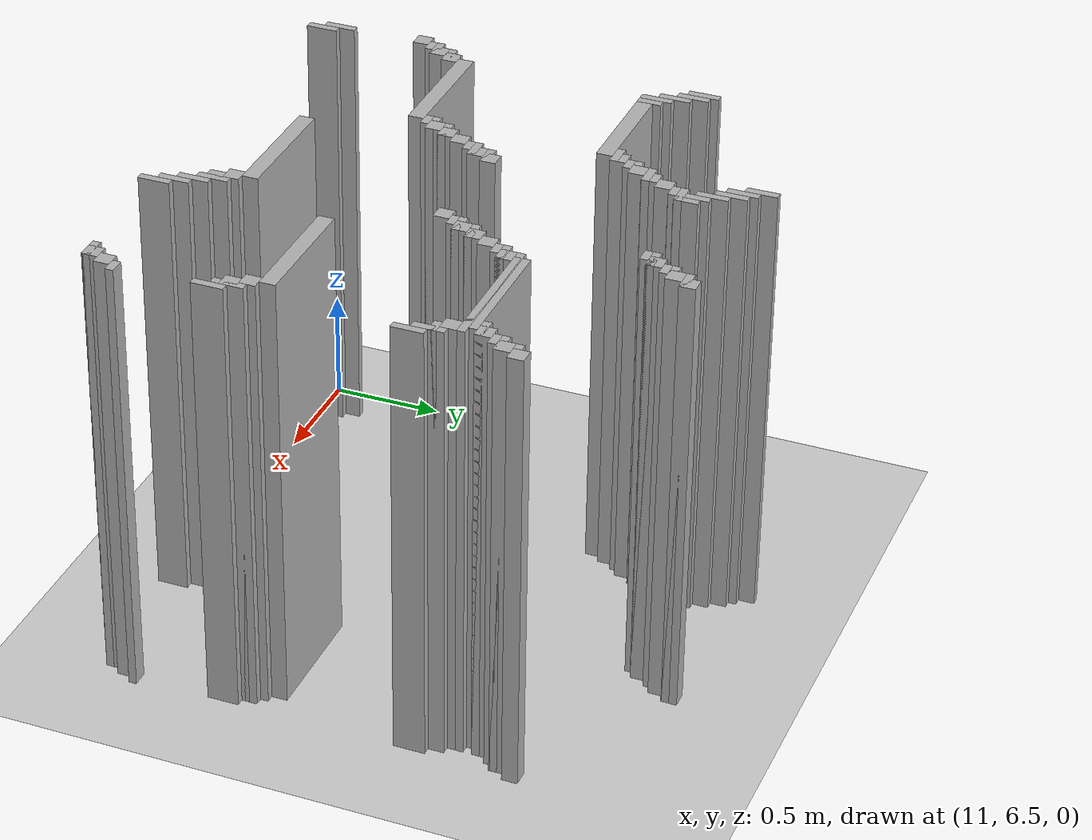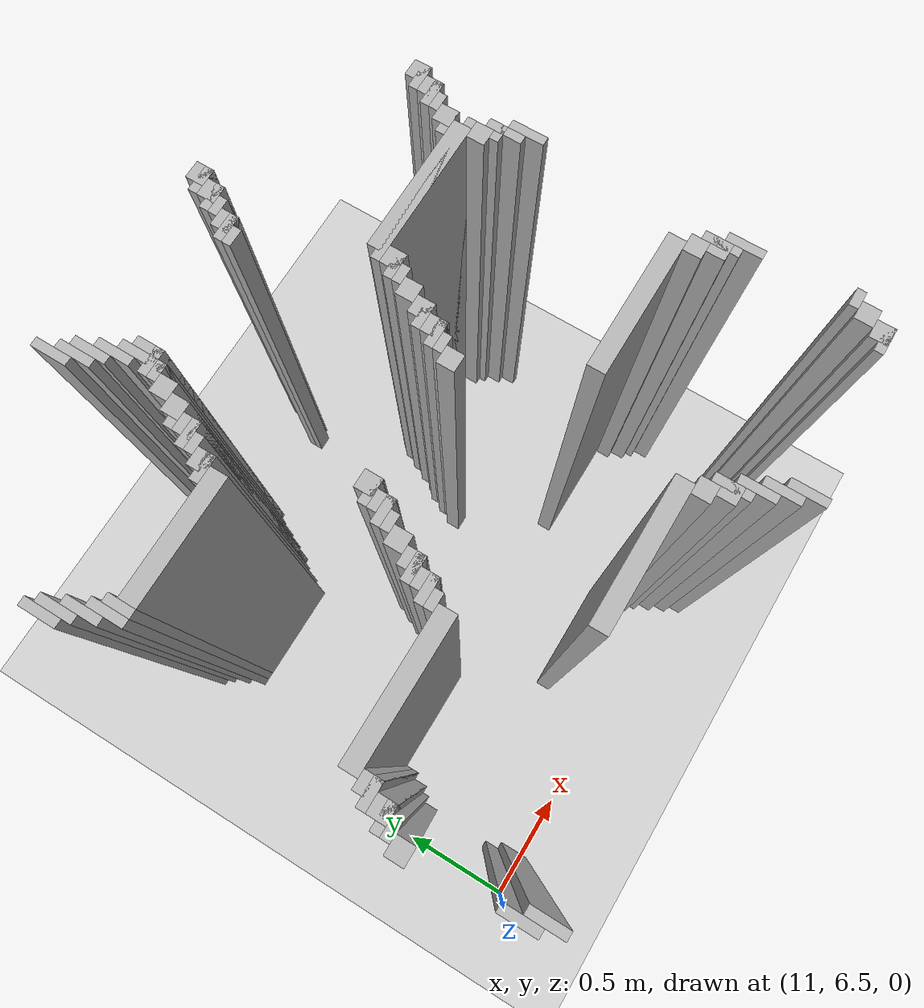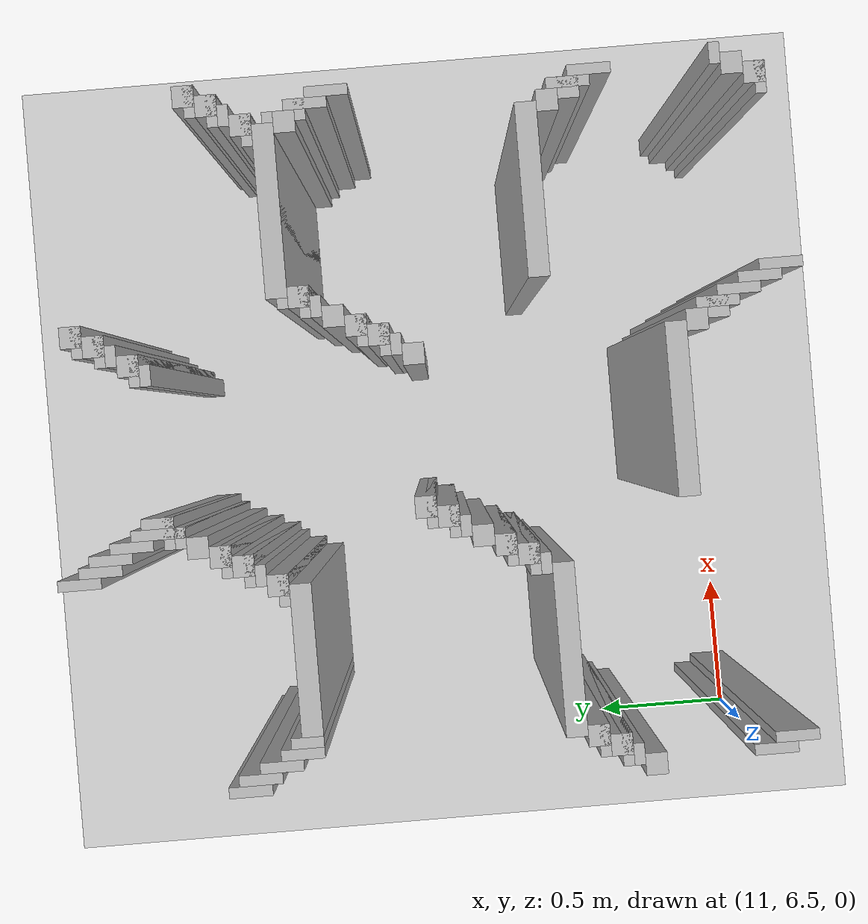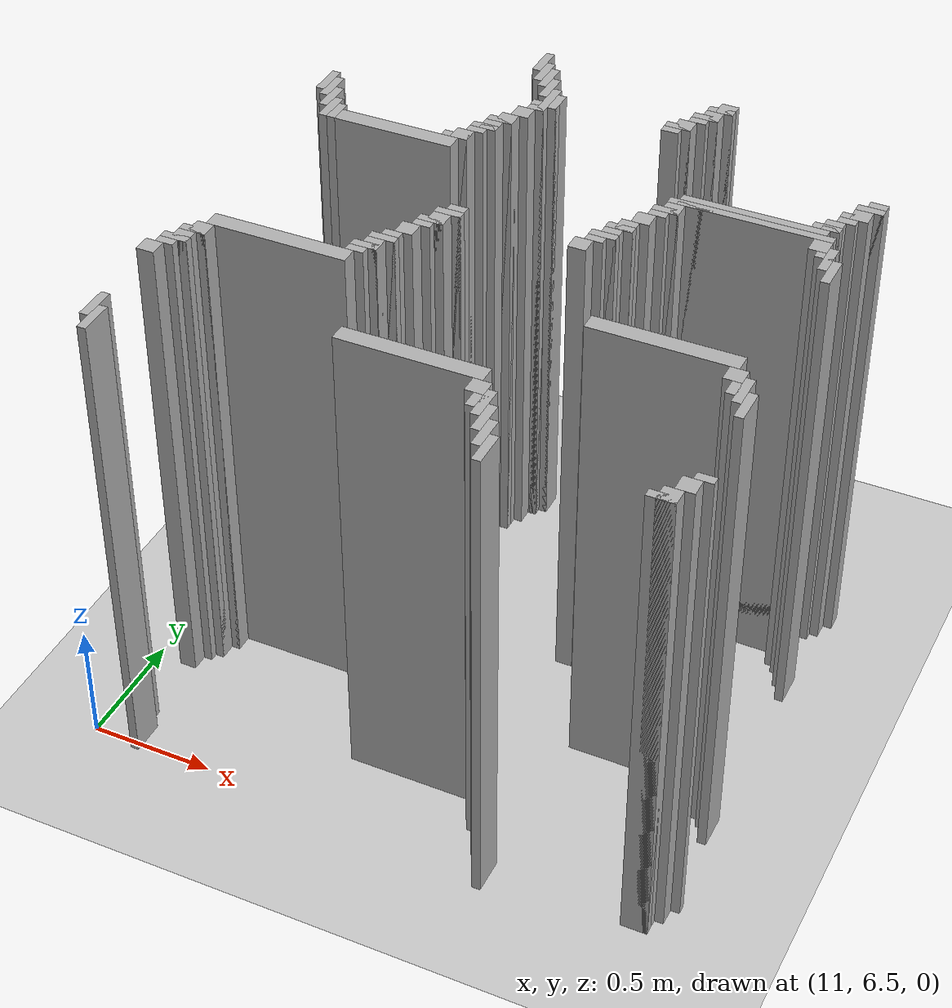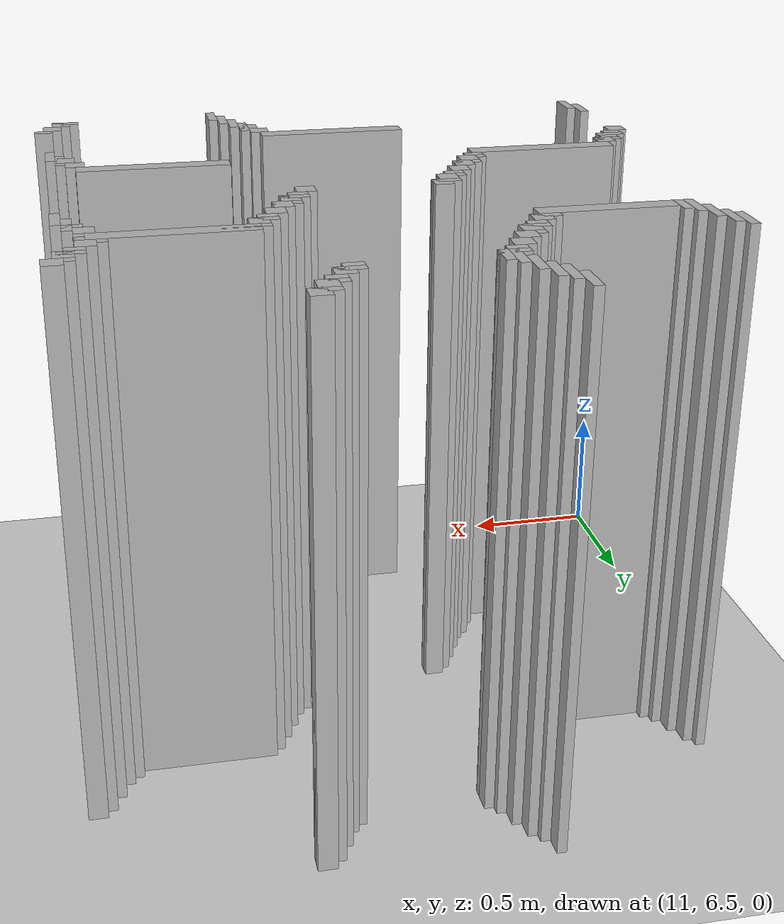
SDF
<sdf version="1.6">
 <world name="slam_world">
  <model name="ground_plane">
   <static>true</static>
   <link name="link">
    <collision name="collision">
     <geometry><plane><normal>0 0 1</normal><size>100 100</size></plane></geometry>
    </collision>
    <visual name="visual">
     <geometry><plane><normal>0 0 1</normal><size>100 100</size></plane></geometry>
     <material>
      <ambient>0.8 0.8 0.8 1</ambient>
      <diffuse>0.8 0.8 0.8 1</diffuse>
      <specular>0.8 0.8 0.8 1</specular>
     </material>
    </visual>
   </link>
  </model>
  <model name="wall_2869">
   <static>true</static>
   <pose>11.850348027842227 8.77030162412993 1.0 0 0 0</pose>
   <link name="link">
    <collision name="collision">
     <geometry><box><size>0.03480278422273782 0.13921113689095127 2.0</size></box></geometry>
    </collision>
    <visual name="visual">
     <geometry><box><size>0.03480278422273782 0.13921113689095127 2.0</size></box></geometry>
     <material><ambient>0.5 0.5 0.5 1</ambient><diffuse>0.7 0.7 0.7 1</diffuse></material>
    </visual>
   </link>
  </model>
  <model name="wall_2884">
   <static>true</static>
   <pose>11.885150812064964 8.700696055684455 1.0 0 0 0</pose>
   <link name="link">
    <collision name="collision">
     <geometry><box><size>0.03480278422273782 0.13921113689095127 2.0</size></box></geometry>
    </collision>
    <visual name="visual">
     <geometry><box><size>0.03480278422273782 0.13921113689095127 2.0</size></box></geometry>
     <material><ambient>0.5 0.5 0.5 1</ambient><diffuse>0.7 0.7 0.7 1</diffuse></material>
    </visual>
   </link>
  </model>
  <model name="wall_2885">
   <static>true</static>
   <pose>12.633410672853827 8.735498839907192 1.0 0 0 0</pose>
   <link name="link">
    <collision name="collision">
     <geometry><box><size>0.06960556844547564 0.06960556844547564 2.0</size></box></geometry>
    </collision>
    <visual name="visual">
     <geometry><box><size>0.06960556844547564 0.06960556844547564 2.0</size></box></geometry>
     <material><ambient>0.5 0.5 0.5 1</ambient><diffuse>0.7 0.7 0.7 1</diffuse></material>
    </visual>
   </link>
  </model>
  <model name="wall_2899">
   <static>true</static>
   <pose>11.919953596287703 8.665893271461716 1.0 0 0 0</pose>
   <link name="link">
    <collision name="collision">
     <geometry><box><size>0.03480278422273782 0.13921113689095127 2.0</size></box></geometry>
    </collision>
    <visual name="visual">
     <geometry><box><size>0.03480278422273782 0.13921113689095127 2.0</size></box></geometry>
     <material><ambient>0.5 0.5 0.5 1</ambient><diffuse>0.7 0.7 0.7 1</diffuse></material>
    </visual>
   </link>
  </model>
  <model name="wall_2900">
   <static>true</static>
   <pose>12.616009280742459 8.718097447795824 1.0 0 0 0</pose>
   <link name="link">
    <collision name="collision">
     <geometry><box><size>0.10440835266821345 0.03480278422273782 2.0</size></box></geometry>
    </collision>
    <visual name="visual">
     <geometry><box><size>0.10440835266821345 0.03480278422273782 2.0</size></box></geometry>
     <material><ambient>0.5 0.5 0.5 1</ambient><diffuse>0.7 0.7 0.7 1</diffuse></material>
    </visual>
   </link>
  </model>
  <model name="wall_2912">
   <static>true</static>
   <pose>12.59860788863109 8.665893271461716 1.0 0 0 0</pose>
   <link name="link">
    <collision name="collision">
     <geometry><box><size>0.06960556844547564 0.06960556844547564 2.0</size></box></geometry>
    </collision>
    <visual name="visual">
     <geometry><box><size>0.06960556844547564 0.06960556844547564 2.0</size></box></geometry>
     <material><ambient>0.5 0.5 0.5 1</ambient><diffuse>0.7 0.7 0.7 1</diffuse></material>
    </visual>
   </link>
  </model>
  <model name="wall_2925">
   <static>true</static>
   <pose>11.95475638051044 8.596287703016241 1.0 0 0 0</pose>
   <link name="link">
    <collision name="collision">
     <geometry><box><size>0.03480278422273782 0.13921113689095127 2.0</size></box></geometry>
    </collision>
    <visual name="visual">
     <geometry><box><size>0.03480278422273782 0.13921113689095127 2.0</size></box></geometry>
     <material><ambient>0.5 0.5 0.5 1</ambient><diffuse>0.7 0.7 0.7 1</diffuse></material>
    </visual>
   </link>
  </model>
  <model name="wall_2926">
   <static>true</static>
   <pose>12.581206496519721 8.648491879350347 1.0 0 0 0</pose>
   <link name="link">
    <collision name="collision">
     <geometry><box><size>0.10440835266821345 0.03480278422273782 2.0</size></box></geometry>
    </collision>
    <visual name="visual">
     <geometry><box><size>0.10440835266821345 0.03480278422273782 2.0</size></box></geometry>
     <material><ambient>0.5 0.5 0.5 1</ambient><diffuse>0.7 0.7 0.7 1</diffuse></material>
    </visual>
   </link>
  </model>
  <model name="wall_2933">
   <static>true</static>
   <pose>12.563805104408353 8.61368909512761 1.0 0 0 0</pose>
   <link name="link">
    <collision name="collision">
     <geometry><box><size>0.06960556844547564 0.03480278422273782 2.0</size></box></geometry>
    </collision>
    <visual name="visual">
     <geometry><box><size>0.06960556844547564 0.03480278422273782 2.0</size></box></geometry>
     <material><ambient>0.5 0.5 0.5 1</ambient><diffuse>0.7 0.7 0.7 1</diffuse></material>
    </visual>
   </link>
  </model>
  <model name="wall_2946">
   <static>true</static>
   <pose>11.989559164733178 8.509280742459396 1.0 0 0 0</pose>
   <link name="link">
    <collision name="collision">
     <geometry><box><size>0.03480278422273782 0.17401392111368907 2.0</size></box></geometry>
    </collision>
    <visual name="visual">
     <geometry><box><size>0.03480278422273782 0.17401392111368907 2.0</size></box></geometry>
     <material><ambient>0.5 0.5 0.5 1</ambient><diffuse>0.7 0.7 0.7 1</diffuse></material>
    </visual>
   </link>
  </model>
  <model name="wall_2947">
   <static>true</static>
   <pose>12.529002320185615 8.561484918793504 1.0 0 0 0</pose>
   <link name="link">
    <collision name="collision">
     <geometry><box><size>0.06960556844547564 0.06960556844547564 2.0</size></box></geometry>
    </collision>
    <visual name="visual">
     <geometry><box><size>0.06960556844547564 0.06960556844547564 2.0</size></box></geometry>
     <material><ambient>0.5 0.5 0.5 1</ambient><diffuse>0.7 0.7 0.7 1</diffuse></material>
    </visual>
   </link>
  </model>
  <model name="wall_2961">
   <static>true</static>
   <pose>12.024361948955915 8.509280742459396 1.0 0 0 0</pose>
   <link name="link">
    <collision name="collision">
     <geometry><box><size>0.03480278422273782 0.10440835266821345 2.0</size></box></geometry>
    </collision>
    <visual name="visual">
     <geometry><box><size>0.03480278422273782 0.10440835266821345 2.0</size></box></geometry>
     <material><ambient>0.5 0.5 0.5 1</ambient><diffuse>0.7 0.7 0.7 1</diffuse></material>
    </visual>
   </link>
  </model>
  <model name="wall_2962">
   <static>true</static>
   <pose>12.511600928074245 8.544083526682135 1.0 0 0 0</pose>
   <link name="link">
    <collision name="collision">
     <geometry><box><size>0.10440835266821345 0.03480278422273782 2.0</size></box></geometry>
    </collision>
    <visual name="visual">
     <geometry><box><size>0.10440835266821345 0.03480278422273782 2.0</size></box></geometry>
     <material><ambient>0.5 0.5 0.5 1</ambient><diffuse>0.7 0.7 0.7 1</diffuse></material>
    </visual>
   </link>
  </model>
  <model name="wall_2973">
   <static>true</static>
   <pose>12.494199535962876 8.509280742459396 1.0 0 0 0</pose>
   <link name="link">
    <collision name="collision">
     <geometry><box><size>0.06960556844547564 0.03480278422273782 2.0</size></box></geometry>
    </collision>
    <visual name="visual">
     <geometry><box><size>0.06960556844547564 0.03480278422273782 2.0</size></box></geometry>
     <material><ambient>0.5 0.5 0.5 1</ambient><diffuse>0.7 0.7 0.7 1</diffuse></material>
    </visual>
   </link>
  </model>
  <model name="wall_2983">
   <static>true</static>
   <pose>11.989559164733178 8.474477958236658 1.0 0 0 0</pose>
   <link name="link">
    <collision name="collision">
     <geometry><box><size>0.10440835266821345 0.03480278422273782 2.0</size></box></geometry>
    </collision>
    <visual name="visual">
     <geometry><box><size>0.10440835266821345 0.03480278422273782 2.0</size></box></geometry>
     <material><ambient>0.5 0.5 0.5 1</ambient><diffuse>0.7 0.7 0.7 1</diffuse></material>
    </visual>
   </link>
  </model>
  <model name="wall_2996">
   <static>true</static>
   <pose>11.97215777262181 8.43967517401392 1.0 0 0 0</pose>
   <link name="link">
    <collision name="collision">
     <geometry><box><size>0.06960556844547564 0.03480278422273782 2.0</size></box></geometry>
    </collision>
    <visual name="visual">
     <geometry><box><size>0.06960556844547564 0.03480278422273782 2.0</size></box></geometry>
     <material><ambient>0.5 0.5 0.5 1</ambient><diffuse>0.7 0.7 0.7 1</diffuse></material>
    </visual>
   </link>
  </model>
  <model name="wall_3009">
   <static>true</static>
   <pose>11.937354988399072 8.387470997679815 1.0 0 0 0</pose>
   <link name="link">
    <collision name="collision">
     <geometry><box><size>0.06960556844547564 0.06960556844547564 2.0</size></box></geometry>
    </collision>
    <visual name="visual">
     <geometry><box><size>0.06960556844547564 0.06960556844547564 2.0</size></box></geometry>
     <material><ambient>0.5 0.5 0.5 1</ambient><diffuse>0.7 0.7 0.7 1</diffuse></material>
    </visual>
   </link>
  </model>
  <model name="wall_3021">
   <static>true</static>
   <pose>11.154292343387471 8.2830626450116 1.0 0 0 0</pose>
   <link name="link">
    <collision name="collision">
     <geometry><box><size>0.03480278422273782 0.13921113689095127 2.0</size></box></geometry>
    </collision>
    <visual name="visual">
     <geometry><box><size>0.03480278422273782 0.13921113689095127 2.0</size></box></geometry>
     <material><ambient>0.5 0.5 0.5 1</ambient><diffuse>0.7 0.7 0.7 1</diffuse></material>
    </visual>
   </link>
  </model>
  <model name="wall_3022">
   <static>true</static>
   <pose>11.902552204176333 8.317865429234338 1.0 0 0 0</pose>
   <link name="link">
    <collision name="collision">
     <geometry><box><size>0.06960556844547564 0.06960556844547564 2.0</size></box></geometry>
    </collision>
    <visual name="visual">
     <geometry><box><size>0.06960556844547564 0.06960556844547564 2.0</size></box></geometry>
     <material><ambient>0.5 0.5 0.5 1</ambient><diffuse>0.7 0.7 0.7 1</diffuse></material>
    </visual>
   </link>
  </model>
  <model name="wall_3023">
   <static>true</static>
   <pose>13.364269141531322 8.317865429234338 1.0 0 0 0</pose>
   <link name="link">
    <collision name="collision">
     <geometry><box><size>0.06960556844547564 0.06960556844547564 2.0</size></box></geometry>
    </collision>
    <visual name="visual">
     <geometry><box><size>0.06960556844547564 0.06960556844547564 2.0</size></box></geometry>
     <material><ambient>0.5 0.5 0.5 1</ambient><diffuse>0.7 0.7 0.7 1</diffuse></material>
    </visual>
   </link>
  </model>
  <model name="wall_3034">
   <static>true</static>
   <pose>11.189095127610209 8.248259860788863 1.0 0 0 0</pose>
   <link name="link">
    <collision name="collision">
     <geometry><box><size>0.03480278422273782 0.13921113689095127 2.0</size></box></geometry>
    </collision>
    <visual name="visual">
     <geometry><box><size>0.03480278422273782 0.13921113689095127 2.0</size></box></geometry>
     <material><ambient>0.5 0.5 0.5 1</ambient><diffuse>0.7 0.7 0.7 1</diffuse></material>
    </visual>
   </link>
  </model>
  <model name="wall_3035">
   <static>true</static>
   <pose>11.885150812064964 8.30046403712297 1.0 0 0 0</pose>
   <link name="link">
    <collision name="collision">
     <geometry><box><size>0.10440835266821345 0.03480278422273782 2.0</size></box></geometry>
    </collision>
    <visual name="visual">
     <geometry><box><size>0.10440835266821345 0.03480278422273782 2.0</size></box></geometry>
     <material><ambient>0.5 0.5 0.5 1</ambient><diffuse>0.7 0.7 0.7 1</diffuse></material>
    </visual>
   </link>
  </model>
  <model name="wall_3036">
   <static>true</static>
   <pose>13.346867749419953 8.30046403712297 1.0 0 0 0</pose>
   <link name="link">
    <collision name="collision">
     <geometry><box><size>0.10440835266821345 0.03480278422273782 2.0</size></box></geometry>
    </collision>
    <visual name="visual">
     <geometry><box><size>0.10440835266821345 0.03480278422273782 2.0</size></box></geometry>
     <material><ambient>0.5 0.5 0.5 1</ambient><diffuse>0.7 0.7 0.7 1</diffuse></material>
    </visual>
   </link>
  </model>
  <model name="wall_3046">
   <static>true</static>
   <pose>11.867749419953595 8.248259860788863 1.0 0 0 0</pose>
   <link name="link">
    <collision name="collision">
     <geometry><box><size>0.06960556844547564 0.06960556844547564 2.0</size></box></geometry>
    </collision>
    <visual name="visual">
     <geometry><box><size>0.06960556844547564 0.06960556844547564 2.0</size></box></geometry>
     <material><ambient>0.5 0.5 0.5 1</ambient><diffuse>0.7 0.7 0.7 1</diffuse></material>
    </visual>
   </link>
  </model>
  <model name="wall_3047">
   <static>true</static>
   <pose>13.329466357308585 8.248259860788863 1.0 0 0 0</pose>
   <link name="link">
    <collision name="collision">
     <geometry><box><size>0.06960556844547564 0.06960556844547564 2.0</size></box></geometry>
    </collision>
    <visual name="visual">
     <geometry><box><size>0.06960556844547564 0.06960556844547564 2.0</size></box></geometry>
     <material><ambient>0.5 0.5 0.5 1</ambient><diffuse>0.7 0.7 0.7 1</diffuse></material>
    </visual>
   </link>
  </model>
  <model name="wall_3058">
   <static>true</static>
   <pose>11.223897911832946 8.178654292343387 1.0 0 0 0</pose>
   <link name="link">
    <collision name="collision">
     <geometry><box><size>0.03480278422273782 0.13921113689095127 2.0</size></box></geometry>
    </collision>
    <visual name="visual">
     <geometry><box><size>0.03480278422273782 0.13921113689095127 2.0</size></box></geometry>
     <material><ambient>0.5 0.5 0.5 1</ambient><diffuse>0.7 0.7 0.7 1</diffuse></material>
    </visual>
   </link>
  </model>
  <model name="wall_3059">
   <static>true</static>
   <pose>11.850348027842227 8.230858468677495 1.0 0 0 0</pose>
   <link name="link">
    <collision name="collision">
     <geometry><box><size>0.10440835266821345 0.03480278422273782 2.0</size></box></geometry>
    </collision>
    <visual name="visual">
     <geometry><box><size>0.10440835266821345 0.03480278422273782 2.0</size></box></geometry>
     <material><ambient>0.5 0.5 0.5 1</ambient><diffuse>0.7 0.7 0.7 1</diffuse></material>
    </visual>
   </link>
  </model>
  <model name="wall_3060">
   <static>true</static>
   <pose>13.312064965197216 8.230858468677495 1.0 0 0 0</pose>
   <link name="link">
    <collision name="collision">
     <geometry><box><size>0.10440835266821345 0.03480278422273782 2.0</size></box></geometry>
    </collision>
    <visual name="visual">
     <geometry><box><size>0.10440835266821345 0.03480278422273782 2.0</size></box></geometry>
     <material><ambient>0.5 0.5 0.5 1</ambient><diffuse>0.7 0.7 0.7 1</diffuse></material>
    </visual>
   </link>
  </model>
  <model name="wall_3068">
   <static>true</static>
   <pose>11.832946635730858 8.196055684454755 1.0 0 0 0</pose>
   <link name="link">
    <collision name="collision">
     <geometry><box><size>0.06960556844547564 0.03480278422273782 2.0</size></box></geometry>
    </collision>
    <visual name="visual">
     <geometry><box><size>0.06960556844547564 0.03480278422273782 2.0</size></box></geometry>
     <material><ambient>0.5 0.5 0.5 1</ambient><diffuse>0.7 0.7 0.7 1</diffuse></material>
    </visual>
   </link>
  </model>
  <model name="wall_3069">
   <static>true</static>
   <pose>13.294663573085847 8.196055684454755 1.0 0 0 0</pose>
   <link name="link">
    <collision name="collision">
     <geometry><box><size>0.06960556844547564 0.03480278422273782 2.0</size></box></geometry>
    </collision>
    <visual name="visual">
     <geometry><box><size>0.06960556844547564 0.03480278422273782 2.0</size></box></geometry>
     <material><ambient>0.5 0.5 0.5 1</ambient><diffuse>0.7 0.7 0.7 1</diffuse></material>
    </visual>
   </link>
  </model>
  <model name="wall_3080">
   <static>true</static>
   <pose>11.258700696055683 8.109048723897912 1.0 0 0 0</pose>
   <link name="link">
    <collision name="collision">
     <geometry><box><size>0.03480278422273782 0.13921113689095127 2.0</size></box></geometry>
    </collision>
    <visual name="visual">
     <geometry><box><size>0.03480278422273782 0.13921113689095127 2.0</size></box></geometry>
     <material><ambient>0.5 0.5 0.5 1</ambient><diffuse>0.7 0.7 0.7 1</diffuse></material>
    </visual>
   </link>
  </model>
  <model name="wall_3081">
   <static>true</static>
   <pose>11.79814385150812 8.14385150812065 1.0 0 0 0</pose>
   <link name="link">
    <collision name="collision">
     <geometry><box><size>0.06960556844547564 0.06960556844547564 2.0</size></box></geometry>
    </collision>
    <visual name="visual">
     <geometry><box><size>0.06960556844547564 0.06960556844547564 2.0</size></box></geometry>
     <material><ambient>0.5 0.5 0.5 1</ambient><diffuse>0.7 0.7 0.7 1</diffuse></material>
    </visual>
   </link>
  </model>
  <model name="wall_3082">
   <static>true</static>
   <pose>13.259860788863108 8.14385150812065 1.0 0 0 0</pose>
   <link name="link">
    <collision name="collision">
     <geometry><box><size>0.06960556844547564 0.06960556844547564 2.0</size></box></geometry>
    </collision>
    <visual name="visual">
     <geometry><box><size>0.06960556844547564 0.06960556844547564 2.0</size></box></geometry>
     <material><ambient>0.5 0.5 0.5 1</ambient><diffuse>0.7 0.7 0.7 1</diffuse></material>
    </visual>
   </link>
  </model>
  <model name="wall_3092">
   <static>true</static>
   <pose>11.293503480278423 8.091647331786543 1.0 0 0 0</pose>
   <link name="link">
    <collision name="collision">
     <geometry><box><size>0.03480278422273782 0.10440835266821345 2.0</size></box></geometry>
    </collision>
    <visual name="visual">
     <geometry><box><size>0.03480278422273782 0.10440835266821345 2.0</size></box></geometry>
     <material><ambient>0.5 0.5 0.5 1</ambient><diffuse>0.7 0.7 0.7 1</diffuse></material>
    </visual>
   </link>
  </model>
  <model name="wall_3093">
   <static>true</static>
   <pose>11.780742459396752 8.12645011600928 1.0 0 0 0</pose>
   <link name="link">
    <collision name="collision">
     <geometry><box><size>0.10440835266821345 0.03480278422273782 2.0</size></box></geometry>
    </collision>
    <visual name="visual">
     <geometry><box><size>0.10440835266821345 0.03480278422273782 2.0</size></box></geometry>
     <material><ambient>0.5 0.5 0.5 1</ambient><diffuse>0.7 0.7 0.7 1</diffuse></material>
    </visual>
   </link>
  </model>
  <model name="wall_3094">
   <static>true</static>
   <pose>13.24245939675174 8.12645011600928 1.0 0 0 0</pose>
   <link name="link">
    <collision name="collision">
     <geometry><box><size>0.10440835266821345 0.03480278422273782 2.0</size></box></geometry>
    </collision>
    <visual name="visual">
     <geometry><box><size>0.10440835266821345 0.03480278422273782 2.0</size></box></geometry>
     <material><ambient>0.5 0.5 0.5 1</ambient><diffuse>0.7 0.7 0.7 1</diffuse></material>
    </visual>
   </link>
  </model>
  <model name="wall_3104">
   <static>true</static>
   <pose>11.554524361948955 8.074245939675174 1.0 0 0 0</pose>
   <link name="link">
    <collision name="collision">
     <geometry><box><size>0.4872389791183295 0.06960556844547564 2.0</size></box></geometry>
    </collision>
    <visual name="visual">
     <geometry><box><size>0.4872389791183295 0.06960556844547564 2.0</size></box></geometry>
     <material><ambient>0.5 0.5 0.5 1</ambient><diffuse>0.7 0.7 0.7 1</diffuse></material>
    </visual>
   </link>
  </model>
  <model name="wall_3105">
   <static>true</static>
   <pose>12.981438515081207 8.074245939675174 1.0 0 0 0</pose>
   <link name="link">
    <collision name="collision">
     <geometry><box><size>0.5568445475638051 0.06960556844547564 2.0</size></box></geometry>
    </collision>
    <visual name="visual">
     <geometry><box><size>0.5568445475638051 0.06960556844547564 2.0</size></box></geometry>
     <material><ambient>0.5 0.5 0.5 1</ambient><diffuse>0.7 0.7 0.7 1</diffuse></material>
    </visual>
   </link>
  </model>
  <model name="wall_3112">
   <static>true</static>
   <pose>12.981438515081207 8.056844547563804 1.0 0 0 0</pose>
   <link name="link">
    <collision name="collision">
     <geometry><box><size>0.6264501160092807 0.03480278422273782 2.0</size></box></geometry>
    </collision>
    <visual name="visual">
     <geometry><box><size>0.6264501160092807 0.03480278422273782 2.0</size></box></geometry>
     <material><ambient>0.5 0.5 0.5 1</ambient><diffuse>0.7 0.7 0.7 1</diffuse></material>
    </visual>
   </link>
  </model>
  <model name="wall_3120">
   <static>true</static>
   <pose>12.703016241299304 8.004640371229698 1.0 0 0 0</pose>
   <link name="link">
    <collision name="collision">
     <geometry><box><size>0.06960556844547564 0.06960556844547564 2.0</size></box></geometry>
    </collision>
    <visual name="visual">
     <geometry><box><size>0.06960556844547564 0.06960556844547564 2.0</size></box></geometry>
     <material><ambient>0.5 0.5 0.5 1</ambient><diffuse>0.7 0.7 0.7 1</diffuse></material>
    </visual>
   </link>
  </model>
  <model name="wall_3121">
   <static>true</static>
   <pose>13.259860788863108 8.004640371229698 1.0 0 0 0</pose>
   <link name="link">
    <collision name="collision">
     <geometry><box><size>0.06960556844547564 0.06960556844547564 2.0</size></box></geometry>
    </collision>
    <visual name="visual">
     <geometry><box><size>0.06960556844547564 0.06960556844547564 2.0</size></box></geometry>
     <material><ambient>0.5 0.5 0.5 1</ambient><diffuse>0.7 0.7 0.7 1</diffuse></material>
    </visual>
   </link>
  </model>
  <model name="wall_3129">
   <static>true</static>
   <pose>12.685614849187935 7.987238979118329 1.0 0 0 0</pose>
   <link name="link">
    <collision name="collision">
     <geometry><box><size>0.10440835266821345 0.03480278422273782 2.0</size></box></geometry>
    </collision>
    <visual name="visual">
     <geometry><box><size>0.10440835266821345 0.03480278422273782 2.0</size></box></geometry>
     <material><ambient>0.5 0.5 0.5 1</ambient><diffuse>0.7 0.7 0.7 1</diffuse></material>
    </visual>
   </link>
  </model>
  <model name="wall_3130">
   <static>true</static>
   <pose>13.312064965197216 7.935034802784222 1.0 0 0 0</pose>
   <link name="link">
    <collision name="collision">
     <geometry><box><size>0.03480278422273782 0.13921113689095127 2.0</size></box></geometry>
    </collision>
    <visual name="visual">
     <geometry><box><size>0.03480278422273782 0.13921113689095127 2.0</size></box></geometry>
     <material><ambient>0.5 0.5 0.5 1</ambient><diffuse>0.7 0.7 0.7 1</diffuse></material>
    </visual>
   </link>
  </model>
  <model name="wall_3135">
   <static>true</static>
   <pose>12.668213457076565 7.952436194895592 1.0 0 0 0</pose>
   <link name="link">
    <collision name="collision">
     <geometry><box><size>0.06960556844547564 0.03480278422273782 2.0</size></box></geometry>
    </collision>
    <visual name="visual">
     <geometry><box><size>0.06960556844547564 0.03480278422273782 2.0</size></box></geometry>
     <material><ambient>0.5 0.5 0.5 1</ambient><diffuse>0.7 0.7 0.7 1</diffuse></material>
    </visual>
   </link>
  </model>
  <model name="wall_3136">
   <static>true</static>
   <pose>13.294663573085847 7.952436194895592 1.0 0 0 0</pose>
   <link name="link">
    <collision name="collision">
     <geometry><box><size>0.06960556844547564 0.03480278422273782 2.0</size></box></geometry>
    </collision>
    <visual name="visual">
     <geometry><box><size>0.06960556844547564 0.03480278422273782 2.0</size></box></geometry>
     <material><ambient>0.5 0.5 0.5 1</ambient><diffuse>0.7 0.7 0.7 1</diffuse></material>
    </visual>
   </link>
  </model>
  <model name="wall_3143">
   <static>true</static>
   <pose>12.633410672853827 7.900232018561485 1.0 0 0 0</pose>
   <link name="link">
    <collision name="collision">
     <geometry><box><size>0.06960556844547564 0.06960556844547564 2.0</size></box></geometry>
    </collision>
    <visual name="visual">
     <geometry><box><size>0.06960556844547564 0.06960556844547564 2.0</size></box></geometry>
     <material><ambient>0.5 0.5 0.5 1</ambient><diffuse>0.7 0.7 0.7 1</diffuse></material>
    </visual>
   </link>
  </model>
  <model name="wall_3144">
   <static>true</static>
   <pose>13.346867749419953 7.865429234338746 1.0 0 0 0</pose>
   <link name="link">
    <collision name="collision">
     <geometry><box><size>0.03480278422273782 0.13921113689095127 2.0</size></box></geometry>
    </collision>
    <visual name="visual">
     <geometry><box><size>0.03480278422273782 0.13921113689095127 2.0</size></box></geometry>
     <material><ambient>0.5 0.5 0.5 1</ambient><diffuse>0.7 0.7 0.7 1</diffuse></material>
    </visual>
   </link>
  </model>
  <model name="wall_3152">
   <static>true</static>
   <pose>12.59860788863109 7.830626450116009 1.0 0 0 0</pose>
   <link name="link">
    <collision name="collision">
     <geometry><box><size>0.06960556844547564 0.06960556844547564 2.0</size></box></geometry>
    </collision>
    <visual name="visual">
     <geometry><box><size>0.06960556844547564 0.06960556844547564 2.0</size></box></geometry>
     <material><ambient>0.5 0.5 0.5 1</ambient><diffuse>0.7 0.7 0.7 1</diffuse></material>
    </visual>
   </link>
  </model>
  <model name="wall_3161">
   <static>true</static>
   <pose>12.581206496519721 7.81322505800464 1.0 0 0 0</pose>
   <link name="link">
    <collision name="collision">
     <geometry><box><size>0.10440835266821345 0.03480278422273782 2.0</size></box></geometry>
    </collision>
    <visual name="visual">
     <geometry><box><size>0.10440835266821345 0.03480278422273782 2.0</size></box></geometry>
     <material><ambient>0.5 0.5 0.5 1</ambient><diffuse>0.7 0.7 0.7 1</diffuse></material>
    </visual>
   </link>
  </model>
  <model name="wall_3166">
   <static>true</static>
   <pose>12.563805104408353 7.761020881670533 1.0 0 0 0</pose>
   <link name="link">
    <collision name="collision">
     <geometry><box><size>0.06960556844547564 0.06960556844547564 2.0</size></box></geometry>
    </collision>
    <visual name="visual">
     <geometry><box><size>0.06960556844547564 0.06960556844547564 2.0</size></box></geometry>
     <material><ambient>0.5 0.5 0.5 1</ambient><diffuse>0.7 0.7 0.7 1</diffuse></material>
    </visual>
   </link>
  </model>
  <model name="wall_3173">
   <static>true</static>
   <pose>12.546403712296984 7.743619489559165 1.0 0 0 0</pose>
   <link name="link">
    <collision name="collision">
     <geometry><box><size>0.10440835266821345 0.03480278422273782 2.0</size></box></geometry>
    </collision>
    <visual name="visual">
     <geometry><box><size>0.10440835266821345 0.03480278422273782 2.0</size></box></geometry>
     <material><ambient>0.5 0.5 0.5 1</ambient><diffuse>0.7 0.7 0.7 1</diffuse></material>
    </visual>
   </link>
  </model>
  <model name="wall_3178">
   <static>true</static>
   <pose>12.529002320185615 7.708816705336426 1.0 0 0 0</pose>
   <link name="link">
    <collision name="collision">
     <geometry><box><size>0.06960556844547564 0.03480278422273782 2.0</size></box></geometry>
    </collision>
    <visual name="visual">
     <geometry><box><size>0.06960556844547564 0.03480278422273782 2.0</size></box></geometry>
     <material><ambient>0.5 0.5 0.5 1</ambient><diffuse>0.7 0.7 0.7 1</diffuse></material>
    </visual>
   </link>
  </model>
  <model name="wall_3188">
   <static>true</static>
   <pose>12.006960556844547 7.65661252900232 1.0 0 0 0</pose>
   <link name="link">
    <collision name="collision">
     <geometry><box><size>0.06960556844547564 0.06960556844547564 2.0</size></box></geometry>
    </collision>
    <visual name="visual">
     <geometry><box><size>0.06960556844547564 0.06960556844547564 2.0</size></box></geometry>
     <material><ambient>0.5 0.5 0.5 1</ambient><diffuse>0.7 0.7 0.7 1</diffuse></material>
    </visual>
   </link>
  </model>
  <model name="wall_3189">
   <static>true</static>
   <pose>12.494199535962876 7.65661252900232 1.0 0 0 0</pose>
   <link name="link">
    <collision name="collision">
     <geometry><box><size>0.06960556844547564 0.06960556844547564 2.0</size></box></geometry>
    </collision>
    <visual name="visual">
     <geometry><box><size>0.06960556844547564 0.06960556844547564 2.0</size></box></geometry>
     <material><ambient>0.5 0.5 0.5 1</ambient><diffuse>0.7 0.7 0.7 1</diffuse></material>
    </visual>
   </link>
  </model>
  <model name="wall_3201">
   <static>true</static>
   <pose>11.989559164733178 7.6392111368909505 1.0 0 0 0</pose>
   <link name="link">
    <collision name="collision">
     <geometry><box><size>0.10440835266821345 0.03480278422273782 2.0</size></box></geometry>
    </collision>
    <visual name="visual">
     <geometry><box><size>0.10440835266821345 0.03480278422273782 2.0</size></box></geometry>
     <material><ambient>0.5 0.5 0.5 1</ambient><diffuse>0.7 0.7 0.7 1</diffuse></material>
    </visual>
   </link>
  </model>
  <model name="wall_3214">
   <static>true</static>
   <pose>11.97215777262181 7.587006960556844 1.0 0 0 0</pose>
   <link name="link">
    <collision name="collision">
     <geometry><box><size>0.06960556844547564 0.06960556844547564 2.0</size></box></geometry>
    </collision>
    <visual name="visual">
     <geometry><box><size>0.06960556844547564 0.06960556844547564 2.0</size></box></geometry>
     <material><ambient>0.5 0.5 0.5 1</ambient><diffuse>0.7 0.7 0.7 1</diffuse></material>
    </visual>
   </link>
  </model>
  <model name="wall_3227">
   <static>true</static>
   <pose>11.95475638051044 7.569605568445476 1.0 0 0 0</pose>
   <link name="link">
    <collision name="collision">
     <geometry><box><size>0.10440835266821345 0.03480278422273782 2.0</size></box></geometry>
    </collision>
    <visual name="visual">
     <geometry><box><size>0.10440835266821345 0.03480278422273782 2.0</size></box></geometry>
     <material><ambient>0.5 0.5 0.5 1</ambient><diffuse>0.7 0.7 0.7 1</diffuse></material>
    </visual>
   </link>
  </model>
  <model name="wall_3237">
   <static>true</static>
   <pose>11.937354988399072 7.534802784222737 1.0 0 0 0</pose>
   <link name="link">
    <collision name="collision">
     <geometry><box><size>0.06960556844547564 0.03480278422273782 2.0</size></box></geometry>
    </collision>
    <visual name="visual">
     <geometry><box><size>0.06960556844547564 0.03480278422273782 2.0</size></box></geometry>
     <material><ambient>0.5 0.5 0.5 1</ambient><diffuse>0.7 0.7 0.7 1</diffuse></material>
    </visual>
   </link>
  </model>
  <model name="wall_3249">
   <static>true</static>
   <pose>11.902552204176333 7.48259860788863 1.0 0 0 0</pose>
   <link name="link">
    <collision name="collision">
     <geometry><box><size>0.06960556844547564 0.06960556844547564 2.0</size></box></geometry>
    </collision>
    <visual name="visual">
     <geometry><box><size>0.06960556844547564 0.06960556844547564 2.0</size></box></geometry>
     <material><ambient>0.5 0.5 0.5 1</ambient><diffuse>0.7 0.7 0.7 1</diffuse></material>
    </visual>
   </link>
  </model>
  <model name="wall_3262">
   <static>true</static>
   <pose>11.867749419953595 7.412993039443156 1.0 0 0 0</pose>
   <link name="link">
    <collision name="collision">
     <geometry><box><size>0.06960556844547564 0.06960556844547564 2.0</size></box></geometry>
    </collision>
    <visual name="visual">
     <geometry><box><size>0.06960556844547564 0.06960556844547564 2.0</size></box></geometry>
     <material><ambient>0.5 0.5 0.5 1</ambient><diffuse>0.7 0.7 0.7 1</diffuse></material>
    </visual>
   </link>
  </model>
  <model name="wall_3275">
   <static>true</static>
   <pose>11.850348027842227 7.395591647331786 1.0 0 0 0</pose>
   <link name="link">
    <collision name="collision">
     <geometry><box><size>0.10440835266821345 0.03480278422273782 2.0</size></box></geometry>
    </collision>
    <visual name="visual">
     <geometry><box><size>0.10440835266821345 0.03480278422273782 2.0</size></box></geometry>
     <material><ambient>0.5 0.5 0.5 1</ambient><diffuse>0.7 0.7 0.7 1</diffuse></material>
    </visual>
   </link>
  </model>
  <model name="wall_3283">
   <static>true</static>
   <pose>11.832946635730858 7.34338747099768 1.0 0 0 0</pose>
   <link name="link">
    <collision name="collision">
     <geometry><box><size>0.06960556844547564 0.06960556844547564 2.0</size></box></geometry>
    </collision>
    <visual name="visual">
     <geometry><box><size>0.06960556844547564 0.06960556844547564 2.0</size></box></geometry>
     <material><ambient>0.5 0.5 0.5 1</ambient><diffuse>0.7 0.7 0.7 1</diffuse></material>
    </visual>
   </link>
  </model>
  <model name="wall_3295">
   <static>true</static>
   <pose>11.81554524361949 7.32598607888631 1.0 0 0 0</pose>
   <link name="link">
    <collision name="collision">
     <geometry><box><size>0.10440835266821345 0.03480278422273782 2.0</size></box></geometry>
    </collision>
    <visual name="visual">
     <geometry><box><size>0.10440835266821345 0.03480278422273782 2.0</size></box></geometry>
     <material><ambient>0.5 0.5 0.5 1</ambient><diffuse>0.7 0.7 0.7 1</diffuse></material>
    </visual>
   </link>
  </model>
  <model name="wall_3303">
   <static>true</static>
   <pose>11.79814385150812 7.291183294663573 1.0 0 0 0</pose>
   <link name="link">
    <collision name="collision">
     <geometry><box><size>0.06960556844547564 0.03480278422273782 2.0</size></box></geometry>
    </collision>
    <visual name="visual">
     <geometry><box><size>0.06960556844547564 0.03480278422273782 2.0</size></box></geometry>
     <material><ambient>0.5 0.5 0.5 1</ambient><diffuse>0.7 0.7 0.7 1</diffuse></material>
    </visual>
   </link>
  </model>
  <model name="wall_3315">
   <static>true</static>
   <pose>11.519721577726218 7.238979118329466 1.0 0 0 0</pose>
   <link name="link">
    <collision name="collision">
     <geometry><box><size>0.5568445475638051 0.06960556844547564 2.0</size></box></geometry>
    </collision>
    <visual name="visual">
     <geometry><box><size>0.5568445475638051 0.06960556844547564 2.0</size></box></geometry>
     <material><ambient>0.5 0.5 0.5 1</ambient><diffuse>0.7 0.7 0.7 1</diffuse></material>
    </visual>
   </link>
  </model>
  <model name="wall_3316">
   <static>true</static>
   <pose>12.981438515081207 7.238979118329466 1.0 0 0 0</pose>
   <link name="link">
    <collision name="collision">
     <geometry><box><size>0.5568445475638051 0.06960556844547564 2.0</size></box></geometry>
    </collision>
    <visual name="visual">
     <geometry><box><size>0.5568445475638051 0.06960556844547564 2.0</size></box></geometry>
     <material><ambient>0.5 0.5 0.5 1</ambient><diffuse>0.7 0.7 0.7 1</diffuse></material>
    </visual>
   </link>
  </model>
  <model name="wall_3327">
   <static>true</static>
   <pose>11.241299303944315 7.16937354988399 1.0 0 0 0</pose>
   <link name="link">
    <collision name="collision">
     <geometry><box><size>0.06960556844547564 0.06960556844547564 2.0</size></box></geometry>
    </collision>
    <visual name="visual">
     <geometry><box><size>0.06960556844547564 0.06960556844547564 2.0</size></box></geometry>
     <material><ambient>0.5 0.5 0.5 1</ambient><diffuse>0.7 0.7 0.7 1</diffuse></material>
    </visual>
   </link>
  </model>
  <model name="wall_3328">
   <static>true</static>
   <pose>13.259860788863108 7.16937354988399 1.0 0 0 0</pose>
   <link name="link">
    <collision name="collision">
     <geometry><box><size>0.06960556844547564 0.06960556844547564 2.0</size></box></geometry>
    </collision>
    <visual name="visual">
     <geometry><box><size>0.06960556844547564 0.06960556844547564 2.0</size></box></geometry>
     <material><ambient>0.5 0.5 0.5 1</ambient><diffuse>0.7 0.7 0.7 1</diffuse></material>
    </visual>
   </link>
  </model>
  <model name="wall_3339">
   <static>true</static>
   <pose>11.223897911832946 7.151972157772621 1.0 0 0 0</pose>
   <link name="link">
    <collision name="collision">
     <geometry><box><size>0.10440835266821345 0.03480278422273782 2.0</size></box></geometry>
    </collision>
    <visual name="visual">
     <geometry><box><size>0.10440835266821345 0.03480278422273782 2.0</size></box></geometry>
     <material><ambient>0.5 0.5 0.5 1</ambient><diffuse>0.7 0.7 0.7 1</diffuse></material>
    </visual>
   </link>
  </model>
  <model name="wall_3340">
   <static>true</static>
   <pose>13.312064965197216 7.099767981438514 1.0 0 0 0</pose>
   <link name="link">
    <collision name="collision">
     <geometry><box><size>0.03480278422273782 0.13921113689095127 2.0</size></box></geometry>
    </collision>
    <visual name="visual">
     <geometry><box><size>0.03480278422273782 0.13921113689095127 2.0</size></box></geometry>
     <material><ambient>0.5 0.5 0.5 1</ambient><diffuse>0.7 0.7 0.7 1</diffuse></material>
    </visual>
   </link>
  </model>
  <model name="wall_3351">
   <static>true</static>
   <pose>11.206496519721577 7.099767981438514 1.0 0 0 0</pose>
   <link name="link">
    <collision name="collision">
     <geometry><box><size>0.06960556844547564 0.06960556844547564 2.0</size></box></geometry>
    </collision>
    <visual name="visual">
     <geometry><box><size>0.06960556844547564 0.06960556844547564 2.0</size></box></geometry>
     <material><ambient>0.5 0.5 0.5 1</ambient><diffuse>0.7 0.7 0.7 1</diffuse></material>
    </visual>
   </link>
  </model>
  <model name="wall_3352">
   <static>true</static>
   <pose>13.294663573085847 7.099767981438514 1.0 0 0 0</pose>
   <link name="link">
    <collision name="collision">
     <geometry><box><size>0.06960556844547564 0.06960556844547564 2.0</size></box></geometry>
    </collision>
    <visual name="visual">
     <geometry><box><size>0.06960556844547564 0.06960556844547564 2.0</size></box></geometry>
     <material><ambient>0.5 0.5 0.5 1</ambient><diffuse>0.7 0.7 0.7 1</diffuse></material>
    </visual>
   </link>
  </model>
  <model name="wall_3363">
   <static>true</static>
   <pose>11.189095127610209 7.082366589327146 1.0 0 0 0</pose>
   <link name="link">
    <collision name="collision">
     <geometry><box><size>0.10440835266821345 0.03480278422273782 2.0</size></box></geometry>
    </collision>
    <visual name="visual">
     <geometry><box><size>0.10440835266821345 0.03480278422273782 2.0</size></box></geometry>
     <material><ambient>0.5 0.5 0.5 1</ambient><diffuse>0.7 0.7 0.7 1</diffuse></material>
    </visual>
   </link>
  </model>
  <model name="wall_3364">
   <static>true</static>
   <pose>13.346867749419953 7.03016241299304 1.0 0 0 0</pose>
   <link name="link">
    <collision name="collision">
     <geometry><box><size>0.03480278422273782 0.13921113689095127 2.0</size></box></geometry>
    </collision>
    <visual name="visual">
     <geometry><box><size>0.03480278422273782 0.13921113689095127 2.0</size></box></geometry>
     <material><ambient>0.5 0.5 0.5 1</ambient><diffuse>0.7 0.7 0.7 1</diffuse></material>
    </visual>
   </link>
  </model>
  <model name="wall_3370">
   <static>true</static>
   <pose>11.17169373549884 7.047563805104408 1.0 0 0 0</pose>
   <link name="link">
    <collision name="collision">
     <geometry><box><size>0.06960556844547564 0.03480278422273782 2.0</size></box></geometry>
    </collision>
    <visual name="visual">
     <geometry><box><size>0.06960556844547564 0.03480278422273782 2.0</size></box></geometry>
     <material><ambient>0.5 0.5 0.5 1</ambient><diffuse>0.7 0.7 0.7 1</diffuse></material>
    </visual>
   </link>
  </model>
  <model name="wall_3380">
   <static>true</static>
   <pose>11.1368909512761 6.995359628770301 1.0 0 0 0</pose>
   <link name="link">
    <collision name="collision">
     <geometry><box><size>0.06960556844547564 0.06960556844547564 2.0</size></box></geometry>
    </collision>
    <visual name="visual">
     <geometry><box><size>0.06960556844547564 0.06960556844547564 2.0</size></box></geometry>
     <material><ambient>0.5 0.5 0.5 1</ambient><diffuse>0.7 0.7 0.7 1</diffuse></material>
    </visual>
   </link>
  </model>
  <model name="wall_3427">
   <static>true</static>
   <pose>12.250580046403712 6.821345707656612 1.0 0 0 0</pose>
   <link name="link">
    <collision name="collision">
     <geometry><box><size>0.5568445475638051 0.06960556844547564 2.0</size></box></geometry>
    </collision>
    <visual name="visual">
     <geometry><box><size>0.5568445475638051 0.06960556844547564 2.0</size></box></geometry>
     <material><ambient>0.5 0.5 0.5 1</ambient><diffuse>0.7 0.7 0.7 1</diffuse></material>
    </visual>
   </link>
  </model>
  <model name="wall_3452">
   <static>true</static>
   <pose>12.529002320185615 6.751740139211137 1.0 0 0 0</pose>
   <link name="link">
    <collision name="collision">
     <geometry><box><size>0.06960556844547564 0.06960556844547564 2.0</size></box></geometry>
    </collision>
    <visual name="visual">
     <geometry><box><size>0.06960556844547564 0.06960556844547564 2.0</size></box></geometry>
     <material><ambient>0.5 0.5 0.5 1</ambient><diffuse>0.7 0.7 0.7 1</diffuse></material>
    </visual>
   </link>
  </model>
  <model name="wall_3472">
   <static>true</static>
   <pose>12.581206496519721 6.682134570765661 1.0 0 0 0</pose>
   <link name="link">
    <collision name="collision">
     <geometry><box><size>0.03480278422273782 0.13921113689095127 2.0</size></box></geometry>
    </collision>
    <visual name="visual">
     <geometry><box><size>0.03480278422273782 0.13921113689095127 2.0</size></box></geometry>
     <material><ambient>0.5 0.5 0.5 1</ambient><diffuse>0.7 0.7 0.7 1</diffuse></material>
    </visual>
   </link>
  </model>
  <model name="wall_3492">
   <static>true</static>
   <pose>12.563805104408353 6.682134570765661 1.0 0 0 0</pose>
   <link name="link">
    <collision name="collision">
     <geometry><box><size>0.06960556844547564 0.06960556844547564 2.0</size></box></geometry>
    </collision>
    <visual name="visual">
     <geometry><box><size>0.06960556844547564 0.06960556844547564 2.0</size></box></geometry>
     <material><ambient>0.5 0.5 0.5 1</ambient><diffuse>0.7 0.7 0.7 1</diffuse></material>
    </visual>
   </link>
  </model>
  <model name="wall_3511">
   <static>true</static>
   <pose>11.154292343387471 6.612529002320185 1.0 0 0 0</pose>
   <link name="link">
    <collision name="collision">
     <geometry><box><size>0.03480278422273782 0.13921113689095127 2.0</size></box></geometry>
    </collision>
    <visual name="visual">
     <geometry><box><size>0.03480278422273782 0.13921113689095127 2.0</size></box></geometry>
     <material><ambient>0.5 0.5 0.5 1</ambient><diffuse>0.7 0.7 0.7 1</diffuse></material>
    </visual>
   </link>
  </model>
  <model name="wall_3512">
   <static>true</static>
   <pose>12.616009280742459 6.612529002320185 1.0 0 0 0</pose>
   <link name="link">
    <collision name="collision">
     <geometry><box><size>0.03480278422273782 0.13921113689095127 2.0</size></box></geometry>
    </collision>
    <visual name="visual">
     <geometry><box><size>0.03480278422273782 0.13921113689095127 2.0</size></box></geometry>
     <material><ambient>0.5 0.5 0.5 1</ambient><diffuse>0.7 0.7 0.7 1</diffuse></material>
    </visual>
   </link>
  </model>
  <model name="wall_3524">
   <static>true</static>
   <pose>13.364269141531322 6.629930394431554 1.0 0 0 0</pose>
   <link name="link">
    <collision name="collision">
     <geometry><box><size>0.06960556844547564 0.03480278422273782 2.0</size></box></geometry>
    </collision>
    <visual name="visual">
     <geometry><box><size>0.06960556844547564 0.03480278422273782 2.0</size></box></geometry>
     <material><ambient>0.5 0.5 0.5 1</ambient><diffuse>0.7 0.7 0.7 1</diffuse></material>
    </visual>
   </link>
  </model>
  <model name="wall_3541">
   <static>true</static>
   <pose>11.189095127610209 6.5429234338747095 1.0 0 0 0</pose>
   <link name="link">
    <collision name="collision">
     <geometry><box><size>0.03480278422273782 0.13921113689095127 2.0</size></box></geometry>
    </collision>
    <visual name="visual">
     <geometry><box><size>0.03480278422273782 0.13921113689095127 2.0</size></box></geometry>
     <material><ambient>0.5 0.5 0.5 1</ambient><diffuse>0.7 0.7 0.7 1</diffuse></material>
    </visual>
   </link>
  </model>
  <model name="wall_3542">
   <static>true</static>
   <pose>12.650812064965196 6.5429234338747095 1.0 0 0 0</pose>
   <link name="link">
    <collision name="collision">
     <geometry><box><size>0.03480278422273782 0.13921113689095127 2.0</size></box></geometry>
    </collision>
    <visual name="visual">
     <geometry><box><size>0.03480278422273782 0.13921113689095127 2.0</size></box></geometry>
     <material><ambient>0.5 0.5 0.5 1</ambient><diffuse>0.7 0.7 0.7 1</diffuse></material>
    </visual>
   </link>
  </model>
  <model name="wall_3543">
   <static>true</static>
   <pose>13.329466357308585 6.577726218097448 1.0 0 0 0</pose>
   <link name="link">
    <collision name="collision">
     <geometry><box><size>0.06960556844547564 0.06960556844547564 2.0</size></box></geometry>
    </collision>
    <visual name="visual">
     <geometry><box><size>0.06960556844547564 0.06960556844547564 2.0</size></box></geometry>
     <material><ambient>0.5 0.5 0.5 1</ambient><diffuse>0.7 0.7 0.7 1</diffuse></material>
    </visual>
   </link>
  </model>
  <model name="wall_3562">
   <static>true</static>
   <pose>12.685614849187935 6.473317865429234 1.0 0 0 0</pose>
   <link name="link">
    <collision name="collision">
     <geometry><box><size>0.03480278422273782 0.13921113689095127 2.0</size></box></geometry>
    </collision>
    <visual name="visual">
     <geometry><box><size>0.03480278422273782 0.13921113689095127 2.0</size></box></geometry>
     <material><ambient>0.5 0.5 0.5 1</ambient><diffuse>0.7 0.7 0.7 1</diffuse></material>
    </visual>
   </link>
  </model>
  <model name="wall_3563">
   <static>true</static>
   <pose>13.294663573085847 6.508120649651972 1.0 0 0 0</pose>
   <link name="link">
    <collision name="collision">
     <geometry><box><size>0.06960556844547564 0.06960556844547564 2.0</size></box></geometry>
    </collision>
    <visual name="visual">
     <geometry><box><size>0.06960556844547564 0.06960556844547564 2.0</size></box></geometry>
     <material><ambient>0.5 0.5 0.5 1</ambient><diffuse>0.7 0.7 0.7 1</diffuse></material>
    </visual>
   </link>
  </model>
  <model name="wall_3583">
   <static>true</static>
   <pose>13.277262180974477 6.490719257540603 1.0 0 0 0</pose>
   <link name="link">
    <collision name="collision">
     <geometry><box><size>0.10440835266821345 0.03480278422273782 2.0</size></box></geometry>
    </collision>
    <visual name="visual">
     <geometry><box><size>0.10440835266821345 0.03480278422273782 2.0</size></box></geometry>
     <material><ambient>0.5 0.5 0.5 1</ambient><diffuse>0.7 0.7 0.7 1</diffuse></material>
    </visual>
   </link>
  </model>
 </world>
</sdf>
